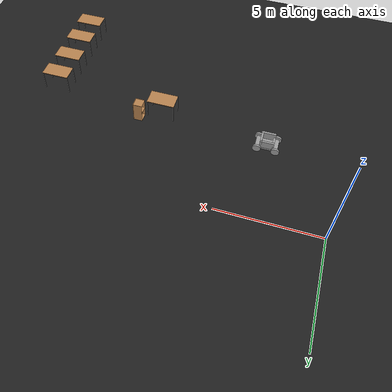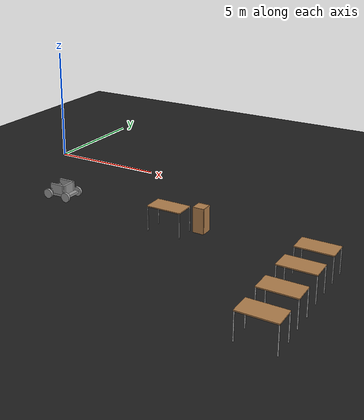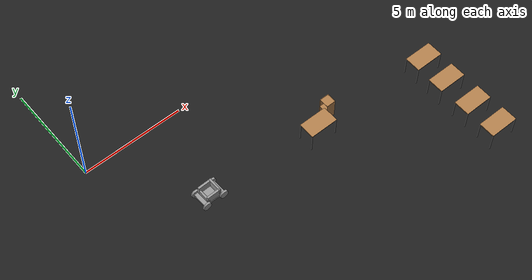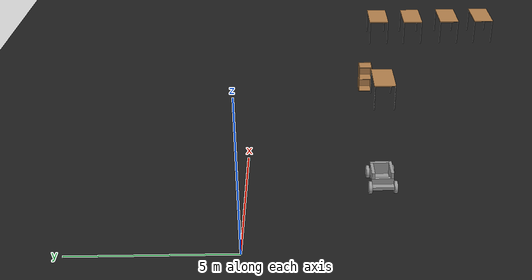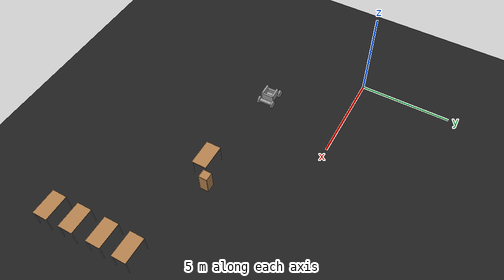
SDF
<sdf version="1.6">
 <world name="default">
  <model name="ground_plane">
   <static>1</static>
   <link name="link">
    <collision name="collision">
     <geometry><plane><normal>0 0 1</normal><size>100 100</size></plane></geometry>
     <surface><friction><ode><mu>100</mu><mu2>50</mu2></ode></friction></surface>
    </collision>
    <visual name="visual">
     <cast_shadows>0</cast_shadows>
     <geometry><plane><normal>0 0 1</normal><size>100 100</size></plane></geometry>
     <material>
      <script><uri>file://media/materials/scripts/gazebo.material</uri><name>Gazebo/FlatBlack</name></script>
     </material>
    </visual>
   </link>
  </model>
  <model name="table_0">
   <static>0</static>
   <link name="link">
    <collision name="surface">
     <pose>0 0 1 0 -0 0</pose>
     <geometry><box><size>1.5 0.8 0.03</size></box></geometry>
     <surface><friction><ode><mu>0.6</mu><mu2>0.6</mu2></ode></friction></surface>
    </collision>
    <visual name="visual1">
     <pose>0 0 1 0 -0 0</pose>
     <geometry><box><size>1.4 0.8 0.04</size></box></geometry>
     <material>
      <script><uri>file://media/materials/scripts/gazebo.material</uri><name>Gazebo/Wood</name></script>
     </material>
    </visual>
    <collision name="front_left_leg">
     <pose>0.68 0.38 0.5 0 -0 0</pose>
     <geometry><cylinder><radius>0.02</radius><length>1</length></cylinder></geometry>
    </collision>
    <visual name="front_left_leg">
     <pose>0.68 0.38 0.5 0 -0 0</pose>
     <geometry><cylinder><radius>0.02</radius><length>1</length></cylinder></geometry>
     <material>
      <script><uri>file://media/materials/scripts/gazebo.material</uri><name>Gazebo/Grey</name></script>
     </material>
    </visual>
    <collision name="front_right_leg">
     <pose>0.68 -0.38 0.5 0 -0 0</pose>
     <geometry><cylinder><radius>0.02</radius><length>1</length></cylinder></geometry>
    </collision>
    <visual name="front_right_leg">
     <pose>0.68 -0.38 0.5 0 -0 0</pose>
     <geometry><cylinder><radius>0.02</radius><length>1</length></cylinder></geometry>
     <material>
      <script><uri>file://media/materials/scripts/gazebo.material</uri><name>Gazebo/Grey</name></script>
     </material>
    </visual>
    <collision name="back_right_leg">
     <pose>-0.68 -0.38 0.5 0 -0 0</pose>
     <geometry><cylinder><radius>0.02</radius><length>1</length></cylinder></geometry>
    </collision>
    <visual name="back_right_leg">
     <pose>-0.68 -0.38 0.5 0 -0 0</pose>
     <geometry><cylinder><radius>0.02</radius><length>1</length></cylinder></geometry>
     <material>
      <script><uri>file://media/materials/scripts/gazebo.material</uri><name>Gazebo/Grey</name></script>
     </material>
    </visual>
    <collision name="back_left_leg">
     <pose>-0.68 0.38 0.5 0 -0 0</pose>
     <geometry><cylinder><radius>0.02</radius><length>1</length></cylinder></geometry>
    </collision>
    <visual name="back_left_leg">
     <pose>-0.68 0.38 0.5 0 -0 0</pose>
     <geometry><cylinder><radius>0.02</radius><length>1</length></cylinder></geometry>
     <material>
      <script><uri>file://media/materials/scripts/gazebo.material</uri><name>Gazebo/Grey</name></script>
     </material>
    </visual>
    <inertial>
     <inertia><ixx>1</ixx><ixy>0</ixy><ixz>0</ixz><iyy>1</iyy><iyz>0</iyz><izz>1</izz></inertia>
     <mass>1</mass>
    </inertial>
   </link>
   <pose>14.8404 -5.25437 -8e-06 0 -2e-06 0</pose>
  </model>
  <model name="table_1">
   <static>0</static>
   <link name="link">
    <collision name="surface">
     <pose>0 0 1 0 -0 0</pose>
     <geometry><box><size>1.5 0.8 0.03</size></box></geometry>
     <surface><friction><ode><mu>0.6</mu><mu2>0.6</mu2></ode></friction></surface>
    </collision>
    <visual name="visual1">
     <pose>0 0 1 0 -0 0</pose>
     <geometry><box><size>1.4 0.8 0.04</size></box></geometry>
     <material>
      <script><uri>file://media/materials/scripts/gazebo.material</uri><name>Gazebo/Wood</name></script>
     </material>
    </visual>
    <collision name="front_left_leg">
     <pose>0.68 0.38 0.5 0 -0 0</pose>
     <geometry><cylinder><radius>0.02</radius><length>1</length></cylinder></geometry>
    </collision>
    <visual name="front_left_leg">
     <pose>0.68 0.38 0.5 0 -0 0</pose>
     <geometry><cylinder><radius>0.02</radius><length>1</length></cylinder></geometry>
     <material>
      <script><uri>file://media/materials/scripts/gazebo.material</uri><name>Gazebo/Grey</name></script>
     </material>
    </visual>
    <collision name="front_right_leg">
     <pose>0.68 -0.38 0.5 0 -0 0</pose>
     <geometry><cylinder><radius>0.02</radius><length>1</length></cylinder></geometry>
    </collision>
    <visual name="front_right_leg">
     <pose>0.68 -0.38 0.5 0 -0 0</pose>
     <geometry><cylinder><radius>0.02</radius><length>1</length></cylinder></geometry>
     <material>
      <script><uri>file://media/materials/scripts/gazebo.material</uri><name>Gazebo/Grey</name></script>
     </material>
    </visual>
    <collision name="back_right_leg">
     <pose>-0.68 -0.38 0.5 0 -0 0</pose>
     <geometry><cylinder><radius>0.02</radius><length>1</length></cylinder></geometry>
    </collision>
    <visual name="back_right_leg">
     <pose>-0.68 -0.38 0.5 0 -0 0</pose>
     <geometry><cylinder><radius>0.02</radius><length>1</length></cylinder></geometry>
     <material>
      <script><uri>file://media/materials/scripts/gazebo.material</uri><name>Gazebo/Grey</name></script>
     </material>
    </visual>
    <collision name="back_left_leg">
     <pose>-0.68 0.38 0.5 0 -0 0</pose>
     <geometry><cylinder><radius>0.02</radius><length>1</length></cylinder></geometry>
    </collision>
    <visual name="back_left_leg">
     <pose>-0.68 0.38 0.5 0 -0 0</pose>
     <geometry><cylinder><radius>0.02</radius><length>1</length></cylinder></geometry>
     <material>
      <script><uri>file://media/materials/scripts/gazebo.material</uri><name>Gazebo/Grey</name></script>
     </material>
    </visual>
    <inertial>
     <inertia><ixx>1</ixx><ixy>0</ixy><ixz>0</ixz><iyy>1</iyy><iyz>0</iyz><izz>1</izz></inertia>
     <mass>1</mass>
    </inertial>
   </link>
   <pose>14.8225 -6.72458 -8e-06 0 -2e-06 0</pose>
  </model>
  <model name="table_2">
   <static>0</static>
   <link name="link">
    <collision name="surface">
     <pose>0 0 1 0 -0 0</pose>
     <geometry><box><size>1.5 0.8 0.03</size></box></geometry>
     <surface><friction><ode><mu>0.6</mu><mu2>0.6</mu2></ode></friction></surface>
    </collision>
    <visual name="visual1">
     <pose>0 0 1 0 -0 0</pose>
     <geometry><box><size>1.4 0.8 0.04</size></box></geometry>
     <material>
      <script><uri>file://media/materials/scripts/gazebo.material</uri><name>Gazebo/Wood</name></script>
     </material>
    </visual>
    <collision name="front_left_leg">
     <pose>0.68 0.38 0.5 0 -0 0</pose>
     <geometry><cylinder><radius>0.02</radius><length>1</length></cylinder></geometry>
    </collision>
    <visual name="front_left_leg">
     <pose>0.68 0.38 0.5 0 -0 0</pose>
     <geometry><cylinder><radius>0.02</radius><length>1</length></cylinder></geometry>
     <material>
      <script><uri>file://media/materials/scripts/gazebo.material</uri><name>Gazebo/Grey</name></script>
     </material>
    </visual>
    <collision name="front_right_leg">
     <pose>0.68 -0.38 0.5 0 -0 0</pose>
     <geometry><cylinder><radius>0.02</radius><length>1</length></cylinder></geometry>
    </collision>
    <visual name="front_right_leg">
     <pose>0.68 -0.38 0.5 0 -0 0</pose>
     <geometry><cylinder><radius>0.02</radius><length>1</length></cylinder></geometry>
     <material>
      <script><uri>file://media/materials/scripts/gazebo.material</uri><name>Gazebo/Grey</name></script>
     </material>
    </visual>
    <collision name="back_right_leg">
     <pose>-0.68 -0.38 0.5 0 -0 0</pose>
     <geometry><cylinder><radius>0.02</radius><length>1</length></cylinder></geometry>
    </collision>
    <visual name="back_right_leg">
     <pose>-0.68 -0.38 0.5 0 -0 0</pose>
     <geometry><cylinder><radius>0.02</radius><length>1</length></cylinder></geometry>
     <material>
      <script><uri>file://media/materials/scripts/gazebo.material</uri><name>Gazebo/Grey</name></script>
     </material>
    </visual>
    <collision name="back_left_leg">
     <pose>-0.68 0.38 0.5 0 -0 0</pose>
     <geometry><cylinder><radius>0.02</radius><length>1</length></cylinder></geometry>
    </collision>
    <visual name="back_left_leg">
     <pose>-0.68 0.38 0.5 0 -0 0</pose>
     <geometry><cylinder><radius>0.02</radius><length>1</length></cylinder></geometry>
     <material>
      <script><uri>file://media/materials/scripts/gazebo.material</uri><name>Gazebo/Grey</name></script>
     </material>
    </visual>
    <inertial>
     <inertia><ixx>1</ixx><ixy>0</ixy><ixz>0</ixz><iyy>1</iyy><iyz>0</iyz><izz>1</izz></inertia>
     <mass>1</mass>
    </inertial>
   </link>
   <pose>14.8521 -8.30805 -8e-06 0 -2e-06 0</pose>
  </model>
  <model name="table_3">
   <static>0</static>
   <link name="link">
    <collision name="surface">
     <pose>0 0 1 0 -0 0</pose>
     <geometry><box><size>1.5 0.8 0.03</size></box></geometry>
     <surface><friction><ode><mu>0.6</mu><mu2>0.6</mu2></ode></friction></surface>
    </collision>
    <visual name="visual1">
     <pose>0 0 1 0 -0 0</pose>
     <geometry><box><size>1.4 0.8 0.04</size></box></geometry>
     <material>
      <script><uri>file://media/materials/scripts/gazebo.material</uri><name>Gazebo/Wood</name></script>
     </material>
    </visual>
    <collision name="front_left_leg">
     <pose>0.68 0.38 0.5 0 -0 0</pose>
     <geometry><cylinder><radius>0.02</radius><length>1</length></cylinder></geometry>
    </collision>
    <visual name="front_left_leg">
     <pose>0.68 0.38 0.5 0 -0 0</pose>
     <geometry><cylinder><radius>0.02</radius><length>1</length></cylinder></geometry>
     <material>
      <script><uri>file://media/materials/scripts/gazebo.material</uri><name>Gazebo/Grey</name></script>
     </material>
    </visual>
    <collision name="front_right_leg">
     <pose>0.68 -0.38 0.5 0 -0 0</pose>
     <geometry><cylinder><radius>0.02</radius><length>1</length></cylinder></geometry>
    </collision>
    <visual name="front_right_leg">
     <pose>0.68 -0.38 0.5 0 -0 0</pose>
     <geometry><cylinder><radius>0.02</radius><length>1</length></cylinder></geometry>
     <material>
      <script><uri>file://media/materials/scripts/gazebo.material</uri><name>Gazebo/Grey</name></script>
     </material>
    </visual>
    <collision name="back_right_leg">
     <pose>-0.68 -0.38 0.5 0 -0 0</pose>
     <geometry><cylinder><radius>0.02</radius><length>1</length></cylinder></geometry>
    </collision>
    <visual name="back_right_leg">
     <pose>-0.68 -0.38 0.5 0 -0 0</pose>
     <geometry><cylinder><radius>0.02</radius><length>1</length></cylinder></geometry>
     <material>
      <script><uri>file://media/materials/scripts/gazebo.material</uri><name>Gazebo/Grey</name></script>
     </material>
    </visual>
    <collision name="back_left_leg">
     <pose>-0.68 0.38 0.5 0 -0 0</pose>
     <geometry><cylinder><radius>0.02</radius><length>1</length></cylinder></geometry>
    </collision>
    <visual name="back_left_leg">
     <pose>-0.68 0.38 0.5 0 -0 0</pose>
     <geometry><cylinder><radius>0.02</radius><length>1</length></cylinder></geometry>
     <material>
      <script><uri>file://media/materials/scripts/gazebo.material</uri><name>Gazebo/Grey</name></script>
     </material>
    </visual>
    <inertial>
     <inertia><ixx>1</ixx><ixy>0</ixy><ixz>0</ixz><iyy>1</iyy><iyz>0</iyz><izz>1</izz></inertia>
     <mass>1</mass>
    </inertial>
   </link>
   <pose>14.8793 -9.8015 -8e-06 0 -2e-06 0</pose>
  </model>
  <model name="cabinet">
   <static>1</static>
   <link name="cabinet_bottom_plate">
    <inertial>
     <pose>0 0 -1 0 -0 0</pose>
     <inertia><ixx>2.05</ixx><ixy>0</ixy><ixz>0</ixz><iyy>2.05</iyy><iyz>0</iyz><izz>2.05</izz></inertia>
     <mass>25</mass>
    </inertial>
    <collision name="cabinet_bottom_plate_geom">
     <pose>0 0 0.01 0 -0 0</pose>
     <geometry><box><size>0.45 0.45 0.02</size></box></geometry>
    </collision>
    <visual name="cabinet_bottom_plate_geom_visual">
     <pose>0 0 0.01 0 -0 0</pose>
     <geometry><box><size>0.45 0.45 0.02</size></box></geometry>
     <material>
      <script><uri>file://media/materials/scripts/gazebo.material</uri><name>Gazebo/Wood</name></script>
     </material>
    </visual>
    <collision name="cabinet_bottom_plate_geom_cabinet_back_plate">
     <pose>0.235 0 0.51 0 -0 0</pose>
     <geometry><box><size>0.02 0.45 1.02</size></box></geometry>
    </collision>
    <visual name="cabinet_bottom_plate_geom_cabinet_back_plate_visual">
     <pose>0.235 0 0.51 0 -0 0</pose>
     <geometry><box><size>0.02 0.45 1.02</size></box></geometry>
     <material>
      <script><uri>file://media/materials/scripts/gazebo.material</uri><name>Gazebo/Wood</name></script>
     </material>
    </visual>
    <collision name="cabinet_bottom_plate_geom_cabinet_left_plate">
     <pose>0 0.235 0.51 0 -0 0</pose>
     <geometry><box><size>0.45 0.02 1.02</size></box></geometry>
    </collision>
    <visual name="cabinet_bottom_plate_geom_cabinet_left_plate_visual">
     <pose>0 0.235 0.51 0 -0 0</pose>
     <geometry><box><size>0.45 0.02 1.02</size></box></geometry>
     <material>
      <script><uri>file://media/materials/scripts/gazebo.material</uri><name>Gazebo/Wood</name></script>
     </material>
    </visual>
    <collision name="cabinet_bottom_plate_geom_cabinet_middle_plate">
     <pose>0 0 0.51 0 -0 0</pose>
     <geometry><box><size>0.45 0.45 0.02</size></box></geometry>
    </collision>
    <visual name="cabinet_bottom_plate_geom_cabinet_middle_plate_visual">
     <pose>0 0 0.51 0 -0 0</pose>
     <geometry><box><size>0.45 0.45 0.02</size></box></geometry>
     <material>
      <script><uri>file://media/materials/scripts/gazebo.material</uri><name>Gazebo/Wood</name></script>
     </material>
    </visual>
    <collision name="cabinet_bottom_plate_geom_cabinet_right_plate">
     <pose>0 -0.235 0.51 0 -0 0</pose>
     <geometry><box><size>0.45 0.02 1.02</size></box></geometry>
    </collision>
    <visual name="cabinet_bottom_plate_geom_cabinet_right_plate_visual">
     <pose>0 -0.235 0.51 0 -0 0</pose>
     <geometry><box><size>0.45 0.02 1.02</size></box></geometry>
     <material>
      <script><uri>file://media/materials/scripts/gazebo.material</uri><name>Gazebo/Wood</name></script>
     </material>
    </visual>
    <collision name="cabinet_bottom_plate_geom_cabinet_top_plate">
     <pose>0 0 1.01 0 -0 0</pose>
     <geometry><box><size>0.45 0.45 0.02</size></box></geometry>
    </collision>
    <visual name="cabinet_bottom_plate_geom_cabinet_top_plate_visual">
     <pose>0 0 1.01 0 -0 0</pose>
     <geometry><box><size>0.45 0.45 0.02</size></box></geometry>
     <material>
      <script><uri>file://media/materials/scripts/gazebo.material</uri><name>Gazebo/Wood</name></script>
     </material>
    </visual>
   </link>
   <pose>9.95525 -4.30148 0 0 -0 0</pose>
  </model>
  <model name="table">
   <static>0</static>
   <link name="link">
    <collision name="surface">
     <pose>0 0 1 0 -0 0</pose>
     <geometry><box><size>1.5 0.8 0.03</size></box></geometry>
     <surface><friction><ode><mu>0.6</mu><mu2>0.6</mu2></ode></friction></surface>
    </collision>
    <visual name="visual1">
     <pose>0 0 1 0 -0 0</pose>
     <geometry><box><size>1.4 0.8 0.04</size></box></geometry>
     <material>
      <script><uri>file://media/materials/scripts/gazebo.material</uri><name>Gazebo/Wood</name></script>
     </material>
    </visual>
    <collision name="front_left_leg">
     <pose>0.68 0.38 0.5 0 -0 0</pose>
     <geometry><cylinder><radius>0.02</radius><length>1</length></cylinder></geometry>
    </collision>
    <visual name="front_left_leg">
     <pose>0.68 0.38 0.5 0 -0 0</pose>
     <geometry><cylinder><radius>0.02</radius><length>1</length></cylinder></geometry>
     <material>
      <script><uri>file://media/materials/scripts/gazebo.material</uri><name>Gazebo/Grey</name></script>
     </material>
    </visual>
    <collision name="front_right_leg">
     <pose>0.68 -0.38 0.5 0 -0 0</pose>
     <geometry><cylinder><radius>0.02</radius><length>1</length></cylinder></geometry>
    </collision>
    <visual name="front_right_leg">
     <pose>0.68 -0.38 0.5 0 -0 0</pose>
     <geometry><cylinder><radius>0.02</radius><length>1</length></cylinder></geometry>
     <material>
      <script><uri>file://media/materials/scripts/gazebo.material</uri><name>Gazebo/Grey</name></script>
     </material>
    </visual>
    <collision name="back_right_leg">
     <pose>-0.68 -0.38 0.5 0 -0 0</pose>
     <geometry><cylinder><radius>0.02</radius><length>1</length></cylinder></geometry>
    </collision>
    <visual name="back_right_leg">
     <pose>-0.68 -0.38 0.5 0 -0 0</pose>
     <geometry><cylinder><radius>0.02</radius><length>1</length></cylinder></geometry>
     <material>
      <script><uri>file://media/materials/scripts/gazebo.material</uri><name>Gazebo/Grey</name></script>
     </material>
    </visual>
    <collision name="back_left_leg">
     <pose>-0.68 0.38 0.5 0 -0 0</pose>
     <geometry><cylinder><radius>0.02</radius><length>1</length></cylinder></geometry>
    </collision>
    <visual name="back_left_leg">
     <pose>-0.68 0.38 0.5 0 -0 0</pose>
     <geometry><cylinder><radius>0.02</radius><length>1</length></cylinder></geometry>
     <material>
      <script><uri>file://media/materials/scripts/gazebo.material</uri><name>Gazebo/Grey</name></script>
     </material>
    </visual>
    <inertial>
     <inertia><ixx>1</ixx><ixy>0</ixy><ixz>0</ixz><iyy>1</iyy><iyz>0</iyz><izz>1</izz></inertia>
     <mass>1</mass>
    </inertial>
   </link>
   <pose>8.90394 -4.9004 -6e-06 3e-06 -3e-06 0</pose>
  </model>
  <model name="mymodel_cart.config_0">
   <link name="link_0">
    <pose>-0 -0 -0.081818 0 -0 0</pose>
    <inertial>
     <mass>1</mass>
     <inertia>
      <ixx>0.166667</ixx>
      <ixy>0</ixy>
      <ixz>0</ixz>
      <iyy>0.166667</iyy>
      <iyz>0</iyz>
      <izz>0.166667</izz>
     </inertia>
    </inertial>
    <visual name="visual">
     <geometry><box><size>0.7 0.7 0.1</size></box></geometry>
     <material>
      <lighting>1</lighting>
      <script><uri>file://media/materials/scripts/gazebo.material</uri><name>Gazebo/Grey</name></script>
      <ambient>0.3 0.3 0.3 1</ambient>
      <diffuse>0.7 0.7 0.7 1</diffuse>
      <specular>0.01 0.01 0.01 1</specular>
      <emissive>0 0 0 1</emissive>
      <shader type="vertex"><normal_map>__default__</normal_map></shader>
     </material>
    </visual>
    <collision name="collision">
     <geometry><box><size>0.7 0.7 0.1</size></box></geometry>
     <surface>
      <friction>
       <ode><mu>1</mu><mu2>1</mu2><fdir1>0 0 0</fdir1><slip1>0</slip1><slip2>0</slip2></ode>
       <torsional>
        <coefficient>1</coefficient>
        <patch_radius>0</patch_radius>
        <surface_radius>0</surface_radius>
        <use_patch_radius>1</use_patch_radius>
        <ode><slip>0</slip></ode>
       </torsional>
      </friction>
      <bounce><restitution_coefficient>0</restitution_coefficient><threshold>1e+06</threshold></bounce>
      <contact>
       <collide_without_contact>0</collide_without_contact>
       <collide_without_contact_bitmask>1</collide_without_contact_bitmask>
       <collide_bitmask>1</collide_bitmask>
       <ode>
        <soft_cfm>0</soft_cfm>
        <soft_erp>0.2</soft_erp>
        <kp>1e+13</kp>
        <kd>1</kd>
        <max_vel>0.01</max_vel>
        <min_depth>0</min_depth>
       </ode>
       <bullet>
        <split_impulse>1</split_impulse>
        <split_impulse_penetration_threshold>-0.01</split_impulse_penetration_threshold>
        <soft_cfm>0</soft_cfm>
        <soft_erp>0.2</soft_erp>
        <kp>1e+13</kp>
        <kd>1</kd>
       </bullet>
      </contact>
     </surface>
    </collision>
   </link>
   <link name="link_0_clone">
    <pose>0.45 0 -0.081818 0 -0 0</pose>
    <inertial>
     <mass>1</mass>
     <inertia>
      <ixx>0.166667</ixx>
      <ixy>0</ixy>
      <ixz>0</ixz>
      <iyy>0.166667</iyy>
      <iyz>0</iyz>
      <izz>0.166667</izz>
     </inertia>
    </inertial>
    <visual name="visual">
     <geometry><box><size>0.2 0.7 0.1</size></box></geometry>
     <material>
      <lighting>1</lighting>
      <script><uri>file://media/materials/scripts/gazebo.material</uri><name>Gazebo/Grey</name></script>
      <ambient>0.3 0.3 0.3 1</ambient>
      <diffuse>0.7 0.7 0.7 1</diffuse>
      <specular>0.01 0.01 0.01 1</specular>
      <emissive>0 0 0 1</emissive>
      <shader type="vertex"><normal_map>__default__</normal_map></shader>
     </material>
    </visual>
    <collision name="collision">
     <geometry><box><size>0.2 0.7 0.1</size></box></geometry>
     <surface>
      <friction>
       <ode><mu>1</mu><mu2>1</mu2><fdir1>0 0 0</fdir1><slip1>0</slip1><slip2>0</slip2></ode>
       <torsional>
        <coefficient>1</coefficient>
        <patch_radius>0</patch_radius>
        <surface_radius>0</surface_radius>
        <use_patch_radius>1</use_patch_radius>
        <ode><slip>0</slip></ode>
       </torsional>
      </friction>
      <bounce><restitution_coefficient>0</restitution_coefficient><threshold>1e+06</threshold></bounce>
      <contact>
       <collide_without_contact>0</collide_without_contact>
       <collide_without_contact_bitmask>1</collide_without_contact_bitmask>
       <collide_bitmask>1</collide_bitmask>
       <ode>
        <soft_cfm>0</soft_cfm>
        <soft_erp>0.2</soft_erp>
        <kp>1e+13</kp>
        <kd>1</kd>
        <max_vel>0.01</max_vel>
        <min_depth>0</min_depth>
       </ode>
       <bullet>
        <split_impulse>1</split_impulse>
        <split_impulse_penetration_threshold>-0.01</split_impulse_penetration_threshold>
        <soft_cfm>0</soft_cfm>
        <soft_erp>0.2</soft_erp>
        <kp>1e+13</kp>
        <kd>1</kd>
       </bullet>
      </contact>
     </surface>
    </collision>
   </link>
   <link name="link_0_clone_clone">
    <pose>-0.45 0 -0.081818 0 -0 0</pose>
    <inertial>
     <mass>1</mass>
     <inertia>
      <ixx>0.166667</ixx>
      <ixy>0</ixy>
      <ixz>0</ixz>
      <iyy>0.166667</iyy>
      <iyz>0</iyz>
      <izz>0.166667</izz>
     </inertia>
    </inertial>
    <visual name="visual">
     <geometry><box><size>0.2 0.7 0.1</size></box></geometry>
     <material>
      <lighting>1</lighting>
      <script><uri>file://media/materials/scripts/gazebo.material</uri><name>Gazebo/Grey</name></script>
      <ambient>0.3 0.3 0.3 1</ambient>
      <diffuse>0.7 0.7 0.7 1</diffuse>
      <specular>0.01 0.01 0.01 1</specular>
      <emissive>0 0 0 1</emissive>
      <shader type="vertex"><normal_map>__default__</normal_map></shader>
     </material>
    </visual>
    <collision name="collision">
     <geometry><box><size>0.2 0.7 0.1</size></box></geometry>
     <surface>
      <friction>
       <ode><mu>1</mu><mu2>1</mu2><fdir1>0 0 0</fdir1><slip1>0</slip1><slip2>0</slip2></ode>
       <torsional>
        <coefficient>1</coefficient>
        <patch_radius>0</patch_radius>
        <surface_radius>0</surface_radius>
        <use_patch_radius>1</use_patch_radius>
        <ode><slip>0</slip></ode>
       </torsional>
      </friction>
      <bounce><restitution_coefficient>0</restitution_coefficient><threshold>1e+06</threshold></bounce>
      <contact>
       <collide_without_contact>0</collide_without_contact>
       <collide_without_contact_bitmask>1</collide_without_contact_bitmask>
       <collide_bitmask>1</collide_bitmask>
       <ode>
        <soft_cfm>0</soft_cfm>
        <soft_erp>0.2</soft_erp>
        <kp>1e+13</kp>
        <kd>1</kd>
        <max_vel>0.01</max_vel>
        <min_depth>0</min_depth>
       </ode>
       <bullet>
        <split_impulse>1</split_impulse>
        <split_impulse_penetration_threshold>-0.01</split_impulse_penetration_threshold>
        <soft_cfm>0</soft_cfm>
        <soft_erp>0.2</soft_erp>
        <kp>1e+13</kp>
        <kd>1</kd>
       </bullet>
      </contact>
     </surface>
    </collision>
   </link>
   <link name="link_1">
    <pose>0.45 -0.400019 -0.081818 1.5707 -0 0</pose>
    <inertial>
     <mass>1</mass>
     <inertia><ixx>0.145833</ixx><ixy>0</ixy><ixz>0</ixz><iyy>0.145833</iyy><iyz>0</iyz><izz>0.125</izz></inertia>
    </inertial>
    <visual name="visual">
     <geometry><cylinder><radius>0.2</radius><length>0.1</length></cylinder></geometry>
     <material>
      <lighting>1</lighting>
      <script><uri>file://media/materials/scripts/gazebo.material</uri><name>Gazebo/Grey</name></script>
      <ambient>0.3 0.3 0.3 1</ambient>
      <diffuse>0.7 0.7 0.7 1</diffuse>
      <specular>0.01 0.01 0.01 1</specular>
      <emissive>0 0 0 1</emissive>
      <shader type="vertex"><normal_map>__default__</normal_map></shader>
     </material>
    </visual>
    <collision name="collision">
     <geometry><cylinder><radius>0.2</radius><length>0.1</length></cylinder></geometry>
     <surface>
      <friction>
       <ode><mu>1</mu><mu2>1</mu2><fdir1>0 0 0</fdir1><slip1>0</slip1><slip2>0</slip2></ode>
       <torsional>
        <coefficient>1</coefficient>
        <patch_radius>0</patch_radius>
        <surface_radius>0</surface_radius>
        <use_patch_radius>1</use_patch_radius>
        <ode><slip>0</slip></ode>
       </torsional>
      </friction>
      <bounce><restitution_coefficient>0</restitution_coefficient><threshold>1e+06</threshold></bounce>
      <contact>
       <collide_without_contact>0</collide_without_contact>
       <collide_without_contact_bitmask>1</collide_without_contact_bitmask>
       <collide_bitmask>1</collide_bitmask>
       <ode>
        <soft_cfm>0</soft_cfm>
        <soft_erp>0.2</soft_erp>
        <kp>1e+13</kp>
        <kd>1</kd>
        <max_vel>0.01</max_vel>
        <min_depth>0</min_depth>
       </ode>
       <bullet>
        <split_impulse>1</split_impulse>
        <split_impulse_penetration_threshold>-0.01</split_impulse_penetration_threshold>
        <soft_cfm>0</soft_cfm>
        <soft_erp>0.2</soft_erp>
        <kp>1e+13</kp>
        <kd>1</kd>
       </bullet>
      </contact>
     </surface>
    </collision>
   </link>
   <link name="link_1_clone">
    <pose>0.45 0.400019 -0.081818 1.5707 -0 0</pose>
    <inertial>
     <mass>1</mass>
     <inertia><ixx>0.145833</ixx><ixy>0</ixy><ixz>0</ixz><iyy>0.145833</iyy><iyz>0</iyz><izz>0.125</izz></inertia>
    </inertial>
    <visual name="visual">
     <geometry><cylinder><radius>0.2</radius><length>0.1</length></cylinder></geometry>
     <material>
      <lighting>1</lighting>
      <script><uri>file://media/materials/scripts/gazebo.material</uri><name>Gazebo/Grey</name></script>
      <ambient>0.3 0.3 0.3 1</ambient>
      <diffuse>0.7 0.7 0.7 1</diffuse>
      <specular>0.01 0.01 0.01 1</specular>
      <emissive>0 0 0 1</emissive>
      <shader type="vertex"><normal_map>__default__</normal_map></shader>
     </material>
    </visual>
    <collision name="collision">
     <geometry><cylinder><radius>0.2</radius><length>0.1</length></cylinder></geometry>
     <surface>
      <friction>
       <ode><mu>1</mu><mu2>1</mu2><fdir1>0 0 0</fdir1><slip1>0</slip1><slip2>0</slip2></ode>
       <torsional>
        <coefficient>1</coefficient>
        <patch_radius>0</patch_radius>
        <surface_radius>0</surface_radius>
        <use_patch_radius>1</use_patch_radius>
        <ode><slip>0</slip></ode>
       </torsional>
      </friction>
      <bounce><restitution_coefficient>0</restitution_coefficient><threshold>1e+06</threshold></bounce>
      <contact>
       <collide_without_contact>0</collide_without_contact>
       <collide_without_contact_bitmask>1</collide_without_contact_bitmask>
       <collide_bitmask>1</collide_bitmask>
       <ode>
        <soft_cfm>0</soft_cfm>
        <soft_erp>0.2</soft_erp>
        <kp>1e+13</kp>
        <kd>1</kd>
        <max_vel>0.01</max_vel>
        <min_depth>0</min_depth>
       </ode>
       <bullet>
        <split_impulse>1</split_impulse>
        <split_impulse_penetration_threshold>-0.01</split_impulse_penetration_threshold>
        <soft_cfm>0</soft_cfm>
        <soft_erp>0.2</soft_erp>
        <kp>1e+13</kp>
        <kd>1</kd>
       </bullet>
      </contact>
     </surface>
    </collision>
   </link>
   <link name="link_1_clone_0">
    <pose>-0.45 -0.400019 -0.081818 1.5707 -0 0</pose>
    <inertial>
     <mass>1</mass>
     <inertia><ixx>0.145833</ixx><ixy>0</ixy><ixz>0</ixz><iyy>0.145833</iyy><iyz>0</iyz><izz>0.125</izz></inertia>
    </inertial>
    <visual name="visual">
     <geometry><cylinder><radius>0.2</radius><length>0.1</length></cylinder></geometry>
     <material>
      <lighting>1</lighting>
      <script><uri>file://media/materials/scripts/gazebo.material</uri><name>Gazebo/Grey</name></script>
      <ambient>0.3 0.3 0.3 1</ambient>
      <diffuse>0.7 0.7 0.7 1</diffuse>
      <specular>0.01 0.01 0.01 1</specular>
      <emissive>0 0 0 1</emissive>
      <shader type="vertex"><normal_map>__default__</normal_map></shader>
     </material>
    </visual>
    <collision name="collision">
     <geometry><cylinder><radius>0.2</radius><length>0.1</length></cylinder></geometry>
     <surface>
      <friction>
       <ode><mu>1</mu><mu2>1</mu2><fdir1>0 0 0</fdir1><slip1>0</slip1><slip2>0</slip2></ode>
       <torsional>
        <coefficient>1</coefficient>
        <patch_radius>0</patch_radius>
        <surface_radius>0</surface_radius>
        <use_patch_radius>1</use_patch_radius>
        <ode><slip>0</slip></ode>
       </torsional>
      </friction>
      <bounce><restitution_coefficient>0</restitution_coefficient><threshold>1e+06</threshold></bounce>
      <contact>
       <collide_without_contact>0</collide_without_contact>
       <collide_without_contact_bitmask>1</collide_without_contact_bitmask>
       <collide_bitmask>1</collide_bitmask>
       <ode>
        <soft_cfm>0</soft_cfm>
        <soft_erp>0.2</soft_erp>
        <kp>1e+13</kp>
        <kd>1</kd>
        <max_vel>0.01</max_vel>
        <min_depth>0</min_depth>
       </ode>
       <bullet>
        <split_impulse>1</split_impulse>
        <split_impulse_penetration_threshold>-0.01</split_impulse_penetration_threshold>
        <soft_cfm>0</soft_cfm>
        <soft_erp>0.2</soft_erp>
        <kp>1e+13</kp>
        <kd>1</kd>
       </bullet>
      </contact>
     </surface>
    </collision>
   </link>
   <link name="link_1_clone_clone">
    <pose>-0.45 0.400019 -0.081818 1.5707 -0 0</pose>
    <inertial>
     <mass>1</mass>
     <inertia><ixx>0.145833</ixx><ixy>0</ixy><ixz>0</ixz><iyy>0.145833</iyy><iyz>0</iyz><izz>0.125</izz></inertia>
    </inertial>
    <visual name="visual">
     <geometry><cylinder><radius>0.2</radius><length>0.1</length></cylinder></geometry>
     <material>
      <lighting>1</lighting>
      <script><uri>file://media/materials/scripts/gazebo.material</uri><name>Gazebo/Grey</name></script>
      <ambient>0.3 0.3 0.3 1</ambient>
      <diffuse>0.7 0.7 0.7 1</diffuse>
      <specular>0.01 0.01 0.01 1</specular>
      <emissive>0 0 0 1</emissive>
      <shader type="vertex"><normal_map>__default__</normal_map></shader>
     </material>
    </visual>
    <collision name="collision">
     <geometry><cylinder><radius>0.2</radius><length>0.1</length></cylinder></geometry>
     <surface>
      <friction>
       <ode><mu>1</mu><mu2>1</mu2><fdir1>0 0 0</fdir1><slip1>0</slip1><slip2>0</slip2></ode>
       <torsional>
        <coefficient>1</coefficient>
        <patch_radius>0</patch_radius>
        <surface_radius>0</surface_radius>
        <use_patch_radius>1</use_patch_radius>
        <ode><slip>0</slip></ode>
       </torsional>
      </friction>
      <bounce><restitution_coefficient>0</restitution_coefficient><threshold>1e+06</threshold></bounce>
      <contact>
       <collide_without_contact>0</collide_without_contact>
       <collide_without_contact_bitmask>1</collide_without_contact_bitmask>
       <collide_bitmask>1</collide_bitmask>
       <ode>
        <soft_cfm>0</soft_cfm>
        <soft_erp>0.2</soft_erp>
        <kp>1e+13</kp>
        <kd>1</kd>
        <max_vel>0.01</max_vel>
        <min_depth>0</min_depth>
       </ode>
       <bullet>
        <split_impulse>1</split_impulse>
        <split_impulse_penetration_threshold>-0.01</split_impulse_penetration_threshold>
        <soft_cfm>0</soft_cfm>
        <soft_erp>0.2</soft_erp>
        <kp>1e+13</kp>
        <kd>1</kd>
       </bullet>
      </contact>
     </surface>
    </collision>
   </link>
   <link name="link_3">
    <pose>-0.3 -0 0.068182 0 -0 0</pose>
    <inertial>
     <mass>1</mass>
     <inertia>
      <ixx>0.166667</ixx>
      <ixy>0</ixy>
      <ixz>0</ixz>
      <iyy>0.166667</iyy>
      <iyz>0</iyz>
      <izz>0.166667</izz>
     </inertia>
    </inertial>
    <visual name="visual">
     <geometry><box><size>0.1 0.7 0.2</size></box></geometry>
     <material>
      <lighting>1</lighting>
      <script><uri>file://media/materials/scripts/gazebo.material</uri><name>Gazebo/Grey</name></script>
      <ambient>0.3 0.3 0.3 1</ambient>
      <diffuse>0.7 0.7 0.7 1</diffuse>
      <specular>0.01 0.01 0.01 1</specular>
      <emissive>0 0 0 1</emissive>
      <shader type="vertex"><normal_map>__default__</normal_map></shader>
     </material>
    </visual>
    <collision name="collision">
     <geometry><box><size>0.1 0.7 0.2</size></box></geometry>
     <surface>
      <friction>
       <ode><mu>1</mu><mu2>1</mu2><fdir1>0 0 0</fdir1><slip1>0</slip1><slip2>0</slip2></ode>
       <torsional>
        <coefficient>1</coefficient>
        <patch_radius>0</patch_radius>
        <surface_radius>0</surface_radius>
        <use_patch_radius>1</use_patch_radius>
        <ode><slip>0</slip></ode>
       </torsional>
      </friction>
      <bounce><restitution_coefficient>0</restitution_coefficient><threshold>1e+06</threshold></bounce>
      <contact>
       <collide_without_contact>0</collide_without_contact>
       <collide_without_contact_bitmask>1</collide_without_contact_bitmask>
       <collide_bitmask>1</collide_bitmask>
       <ode>
        <soft_cfm>0</soft_cfm>
        <soft_erp>0.2</soft_erp>
        <kp>1e+13</kp>
        <kd>1</kd>
        <max_vel>0.01</max_vel>
        <min_depth>0</min_depth>
       </ode>
       <bullet>
        <split_impulse>1</split_impulse>
        <split_impulse_penetration_threshold>-0.01</split_impulse_penetration_threshold>
        <soft_cfm>0</soft_cfm>
        <soft_erp>0.2</soft_erp>
        <kp>1e+13</kp>
        <kd>1</kd>
       </bullet>
      </contact>
     </surface>
    </collision>
   </link>
   <link name="link_3_clone">
    <pose>-0 -0.3 0.168182 0 -0 0</pose>
    <inertial>
     <mass>1</mass>
     <inertia>
      <ixx>0.166667</ixx>
      <ixy>0</ixy>
      <ixz>0</ixz>
      <iyy>0.166667</iyy>
      <iyz>0</iyz>
      <izz>0.166667</izz>
     </inertia>
    </inertial>
    <visual name="visual">
     <geometry><box><size>0.7 0.1 0.4</size></box></geometry>
     <material>
      <lighting>1</lighting>
      <script><uri>file://media/materials/scripts/gazebo.material</uri><name>Gazebo/Grey</name></script>
      <ambient>0.3 0.3 0.3 1</ambient>
      <diffuse>0.7 0.7 0.7 1</diffuse>
      <specular>0.01 0.01 0.01 1</specular>
      <emissive>0 0 0 1</emissive>
      <shader type="vertex"><normal_map>__default__</normal_map></shader>
     </material>
    </visual>
    <collision name="collision">
     <geometry><box><size>0.7 0.1 0.4</size></box></geometry>
     <surface>
      <friction>
       <ode><mu>1</mu><mu2>1</mu2><fdir1>0 0 0</fdir1><slip1>0</slip1><slip2>0</slip2></ode>
       <torsional>
        <coefficient>1</coefficient>
        <patch_radius>0</patch_radius>
        <surface_radius>0</surface_radius>
        <use_patch_radius>1</use_patch_radius>
        <ode><slip>0</slip></ode>
       </torsional>
      </friction>
      <bounce><restitution_coefficient>0</restitution_coefficient><threshold>1e+06</threshold></bounce>
      <contact>
       <collide_without_contact>0</collide_without_contact>
       <collide_without_contact_bitmask>1</collide_without_contact_bitmask>
       <collide_bitmask>1</collide_bitmask>
       <ode>
        <soft_cfm>0</soft_cfm>
        <soft_erp>0.2</soft_erp>
        <kp>1e+13</kp>
        <kd>1</kd>
        <max_vel>0.01</max_vel>
        <min_depth>0</min_depth>
       </ode>
       <bullet>
        <split_impulse>1</split_impulse>
        <split_impulse_penetration_threshold>-0.01</split_impulse_penetration_threshold>
        <soft_cfm>0</soft_cfm>
        <soft_erp>0.2</soft_erp>
        <kp>1e+13</kp>
        <kd>1</kd>
       </bullet>
      </contact>
     </surface>
    </collision>
   </link>
   <link name="link_3_clone_0">
    <pose>0.3 -0 0.168182 0 -0 0</pose>
    <inertial>
     <mass>1</mass>
     <inertia>
      <ixx>0.166667</ixx>
      <ixy>0</ixy>
      <ixz>0</ixz>
      <iyy>0.166667</iyy>
      <iyz>0</iyz>
      <izz>0.166667</izz>
     </inertia>
    </inertial>
    <visual name="visual">
     <geometry><box><size>0.1 0.7 0.4</size></box></geometry>
     <material>
      <lighting>1</lighting>
      <script><uri>file://media/materials/scripts/gazebo.material</uri><name>Gazebo/Grey</name></script>
      <ambient>0.3 0.3 0.3 1</ambient>
      <diffuse>0.7 0.7 0.7 1</diffuse>
      <specular>0.01 0.01 0.01 1</specular>
      <emissive>0 0 0 1</emissive>
      <shader type="vertex"><normal_map>__default__</normal_map></shader>
     </material>
    </visual>
    <collision name="collision">
     <geometry><box><size>0.1 0.7 0.4</size></box></geometry>
     <surface>
      <friction>
       <ode><mu>1</mu><mu2>1</mu2><fdir1>0 0 0</fdir1><slip1>0</slip1><slip2>0</slip2></ode>
       <torsional>
        <coefficient>1</coefficient>
        <patch_radius>0</patch_radius>
        <surface_radius>0</surface_radius>
        <use_patch_radius>1</use_patch_radius>
        <ode><slip>0</slip></ode>
       </torsional>
      </friction>
      <bounce><restitution_coefficient>0</restitution_coefficient><threshold>1e+06</threshold></bounce>
      <contact>
       <collide_without_contact>0</collide_without_contact>
       <collide_without_contact_bitmask>1</collide_without_contact_bitmask>
       <collide_bitmask>1</collide_bitmask>
       <ode>
        <soft_cfm>0</soft_cfm>
        <soft_erp>0.2</soft_erp>
        <kp>1e+13</kp>
        <kd>1</kd>
        <max_vel>0.01</max_vel>
        <min_depth>0</min_depth>
       </ode>
       <bullet>
        <split_impulse>1</split_impulse>
        <split_impulse_penetration_threshold>-0.01</split_impulse_penetration_threshold>
        <soft_cfm>0</soft_cfm>
        <soft_erp>0.2</soft_erp>
        <kp>1e+13</kp>
        <kd>1</kd>
       </bullet>
      </contact>
     </surface>
    </collision>
   </link>
   <link name="link_3_clone_clone_0">
    <pose>-0 0.3 0.168182 0 -0 0</pose>
    <inertial>
     <mass>1</mass>
     <inertia>
      <ixx>0.166667</ixx>
      <ixy>0</ixy>
      <ixz>0</ixz>
      <iyy>0.166667</iyy>
      <iyz>0</iyz>
      <izz>0.166667</izz>
     </inertia>
    </inertial>
    <visual name="visual">
     <geometry><box><size>0.7 0.1 0.4</size></box></geometry>
     <material>
      <lighting>1</lighting>
      <script><uri>file://media/materials/scripts/gazebo.material</uri><name>Gazebo/Grey</name></script>
      <ambient>0.3 0.3 0.3 1</ambient>
      <diffuse>0.7 0.7 0.7 1</diffuse>
      <specular>0.01 0.01 0.01 1</specular>
      <emissive>0 0 0 1</emissive>
      <shader type="vertex"><normal_map>__default__</normal_map></shader>
     </material>
    </visual>
    <collision name="collision">
     <geometry><box><size>0.7 0.1 0.4</size></box></geometry>
     <surface>
      <friction>
       <ode><mu>1</mu><mu2>1</mu2><fdir1>0 0 0</fdir1><slip1>0</slip1><slip2>0</slip2></ode>
       <torsional>
        <coefficient>1</coefficient>
        <patch_radius>0</patch_radius>
        <surface_radius>0</surface_radius>
        <use_patch_radius>1</use_patch_radius>
        <ode><slip>0</slip></ode>
       </torsional>
      </friction>
      <bounce><restitution_coefficient>0</restitution_coefficient><threshold>1e+06</threshold></bounce>
      <contact>
       <collide_without_contact>0</collide_without_contact>
       <collide_without_contact_bitmask>1</collide_without_contact_bitmask>
       <collide_bitmask>1</collide_bitmask>
       <ode>
        <soft_cfm>0</soft_cfm>
        <soft_erp>0.2</soft_erp>
        <kp>1e+13</kp>
        <kd>1</kd>
        <max_vel>0.01</max_vel>
        <min_depth>0</min_depth>
       </ode>
       <bullet>
        <split_impulse>1</split_impulse>
        <split_impulse_penetration_threshold>-0.01</split_impulse_penetration_threshold>
        <soft_cfm>0</soft_cfm>
        <soft_erp>0.2</soft_erp>
        <kp>1e+13</kp>
        <kd>1</kd>
       </bullet>
      </contact>
     </surface>
    </collision>
   </link>
   <joint name="link_0_JOINT_0" type="fixed">
    <parent>link_0</parent>
    <child>link_0_clone</child>
    <physics>
     <ode><limit><cfm>0</cfm><erp>0.2</erp></limit><suspension><cfm>0</cfm><erp>0.2</erp></suspension></ode>
    </physics>
   </joint>
   <joint name="link_0_JOINT_12" type="fixed">
    <parent>link_0</parent>
    <child>link_3</child>
    <physics>
     <ode><limit><cfm>0</cfm><erp>0.2</erp></limit><suspension><cfm>0</cfm><erp>0.2</erp></suspension></ode>
    </physics>
   </joint>
   <joint name="link_0_JOINT_1" type="fixed">
    <parent>link_0</parent>
    <child>link_0_clone_clone</child>
    <physics>
     <ode><limit><cfm>0</cfm><erp>0.2</erp></limit><suspension><cfm>0</cfm><erp>0.2</erp></suspension></ode>
    </physics>
   </joint>
   <joint name="link_0_JOINT_7" type="fixed">
    <parent>link_0</parent>
    <child>link_3_clone_clone_0</child>
    <physics>
     <ode><limit><cfm>0</cfm><erp>0.2</erp></limit><suspension><cfm>0</cfm><erp>0.2</erp></suspension></ode>
    </physics>
   </joint>
   <joint name="link_0_JOINT_8" type="fixed">
    <parent>link_0</parent>
    <child>link_3_clone</child>
    <physics>
     <ode><limit><cfm>0</cfm><erp>0.2</erp></limit><suspension><cfm>0</cfm><erp>0.2</erp></suspension></ode>
    </physics>
   </joint>
   <joint name="link_0_JOINT_9" type="fixed">
    <parent>link_0</parent>
    <child>link_3_clone_0</child>
    <physics>
     <ode><limit><cfm>0</cfm><erp>0.2</erp></limit><suspension><cfm>0</cfm><erp>0.2</erp></suspension></ode>
    </physics>
   </joint>
   <joint name="link_0_clone_JOINT_2" type="revolute">
    <parent>link_0_clone</parent>
    <child>link_1</child>
    <axis>
     <xyz>0 0 1</xyz>
     <use_parent_model_frame>0</use_parent_model_frame>
     <limit>
      <lower>-1.79769e+308</lower>
      <upper>1.79769e+308</upper>
      <effort>-1</effort>
      <velocity>-1</velocity>
     </limit>
     <dynamics>
      <spring_reference>0</spring_reference>
      <spring_stiffness>0</spring_stiffness>
      <damping>0</damping>
      <friction>0</friction>
     </dynamics>
    </axis>
    <physics>
     <ode><limit><cfm>0</cfm><erp>0.2</erp></limit><suspension><cfm>0</cfm><erp>0.2</erp></suspension></ode>
    </physics>
   </joint>
   <joint name="link_0_clone_JOINT_3" type="revolute">
    <parent>link_0_clone</parent>
    <child>link_1_clone</child>
    <axis>
     <xyz>1 0 0</xyz>
     <use_parent_model_frame>0</use_parent_model_frame>
     <limit>
      <lower>-1.79769e+308</lower>
      <upper>1.79769e+308</upper>
      <effort>-1</effort>
      <velocity>-1</velocity>
     </limit>
     <dynamics>
      <spring_reference>0</spring_reference>
      <spring_stiffness>0</spring_stiffness>
      <damping>0</damping>
      <friction>0</friction>
     </dynamics>
    </axis>
    <physics>
     <ode><limit><cfm>0</cfm><erp>0.2</erp></limit><suspension><cfm>0</cfm><erp>0.2</erp></suspension></ode>
    </physics>
   </joint>
   <joint name="link_0_clone_clone_JOINT_5" type="revolute">
    <parent>link_0_clone_clone</parent>
    <child>link_1_clone_0</child>
    <axis>
     <xyz>0 0 1</xyz>
     <use_parent_model_frame>0</use_parent_model_frame>
     <limit>
      <lower>-1.79769e+308</lower>
      <upper>1.79769e+308</upper>
      <effort>-1</effort>
      <velocity>-1</velocity>
     </limit>
     <dynamics>
      <spring_reference>0</spring_reference>
      <spring_stiffness>0</spring_stiffness>
      <damping>0</damping>
      <friction>0</friction>
     </dynamics>
    </axis>
    <physics>
     <ode><limit><cfm>0</cfm><erp>0.2</erp></limit><suspension><cfm>0</cfm><erp>0.2</erp></suspension></ode>
    </physics>
   </joint>
   <joint name="link_0_clone_clone_JOINT_6" type="revolute">
    <parent>link_0_clone_clone</parent>
    <child>link_1_clone_clone</child>
    <axis>
     <xyz>0 0 1</xyz>
     <use_parent_model_frame>0</use_parent_model_frame>
     <limit>
      <lower>-1.79769e+308</lower>
      <upper>1.79769e+308</upper>
      <effort>-1</effort>
      <velocity>-1</velocity>
     </limit>
     <dynamics>
      <spring_reference>0</spring_reference>
      <spring_stiffness>0</spring_stiffness>
      <damping>0</damping>
      <friction>0</friction>
     </dynamics>
    </axis>
    <physics>
     <ode><limit><cfm>0</cfm><erp>0.2</erp></limit><suspension><cfm>0</cfm><erp>0.2</erp></suspension></ode>
    </physics>
   </joint>
   <static>0</static>
   <pose>3.36998 -4.29663 0.281817 -4e-06 3e-06 0.013704</pose>
  </model>
 </world>
</sdf>
